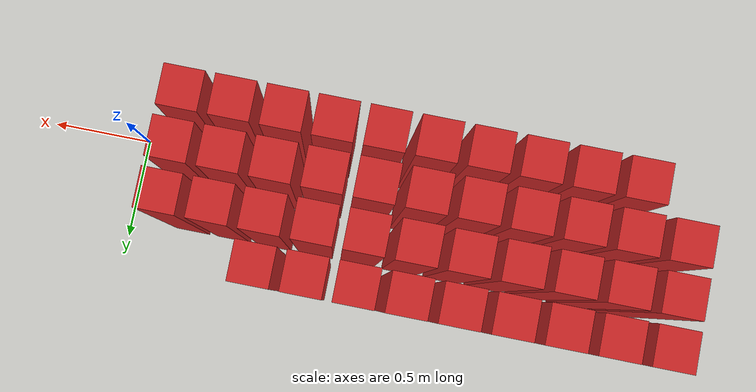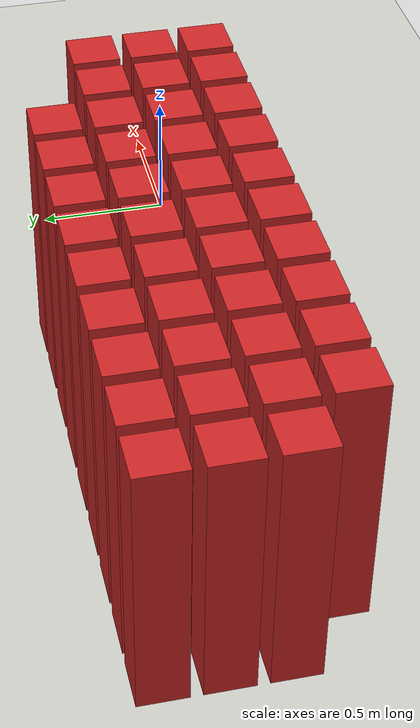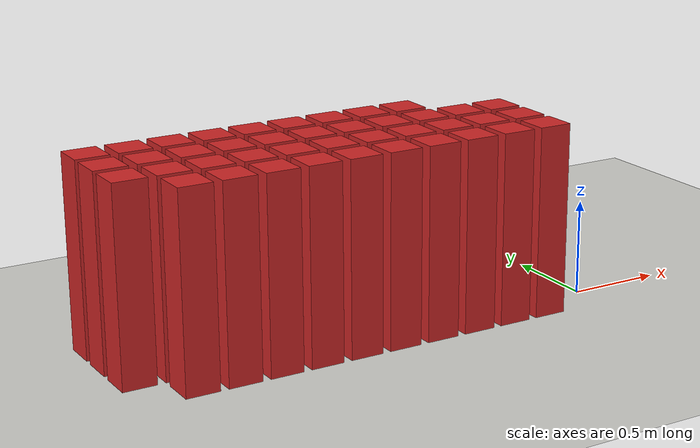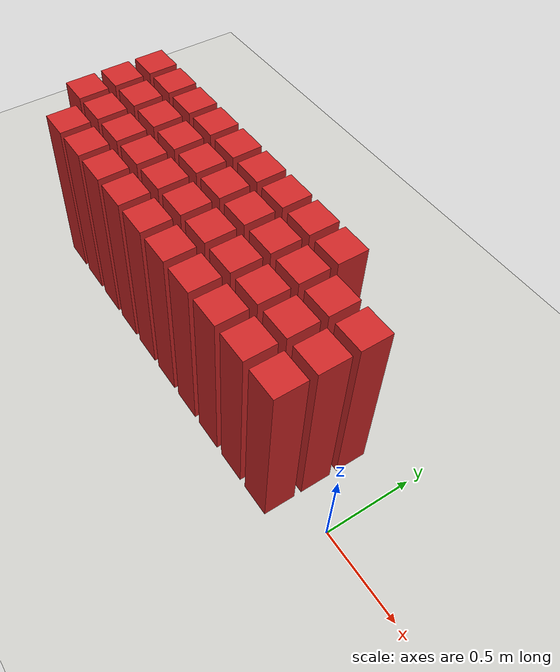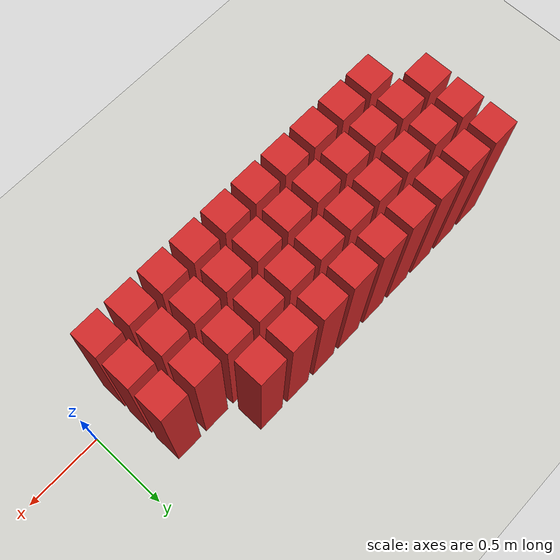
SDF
<sdf version="1.7">
 <world name="default">
  <model name="ground_plane">
   <static>1</static>
   <link name="link">
    <collision name="collision">
     <geometry><plane><normal>0 0 1</normal><size>100 100</size></plane></geometry>
     <surface>
      <contact><collide_bitmask>65535</collide_bitmask></contact>
      <friction><ode><mu>100</mu><mu2>50</mu2></ode></friction>
     </surface>
    </collision>
    <visual name="visual">
     <cast_shadows>0</cast_shadows>
     <geometry><plane><normal>0 0 1</normal><size>100 100</size></plane></geometry>
     <material>
      <script><uri>file://media/materials/scripts/gazebo.material</uri><name>Gazebo/CeilingTiled</name></script>
     </material>
    </visual>
   </link>
  </model>
  <model name="wall254">
   <link name="link">
    <pose>0 0 0.5 0 -0 0</pose>
    <inertial>
     <mass>0.5167</mass>
     <inertia>
      <ixx>0.000861167</ixx>
      <ixy>0</ixy>
      <ixz>0</ixz>
      <iyy>0.000861167</iyy>
      <iyz>0</iyz>
      <izz>0.000861167</izz>
     </inertia>
    </inertial>
    <collision name="collision">
     <geometry><box><size>0.21 0.21 1</size></box></geometry>
     <surface>
      <contact>
       <poissons_ratio>0.347</poissons_ratio>
       <elastic_modulus>8.8e+09</elastic_modulus>
       <ode><kp>100000</kp><kd>100</kd><max_vel>100</max_vel><min_depth>0.001</min_depth></ode>
      </contact>
      <friction>
       <torsional>
        <coefficient>1</coefficient>
        <use_patch_radius>0</use_patch_radius>
        <surface_radius>0.01</surface_radius>
       </torsional>
      </friction>
     </surface>
    </collision>
    <visual name="visual">
     <geometry><box><size>0.175 0.175 1</size></box></geometry>
     <material>
      <script><uri>file://media/materials/scripts/gazebo.material</uri><name>Gazebo/Red</name></script>
     </material>
    </visual>
   </link>
   <pose>-2.28261 -0.108696 0 0 -0 0</pose>
  </model>
  <model name="wall255">
   <link name="link">
    <pose>0 0 0.5 0 -0 0</pose>
    <inertial>
     <mass>0.5167</mass>
     <inertia>
      <ixx>0.000861167</ixx>
      <ixy>0</ixy>
      <ixz>0</ixz>
      <iyy>0.000861167</iyy>
      <iyz>0</iyz>
      <izz>0.000861167</izz>
     </inertia>
    </inertial>
    <collision name="collision">
     <geometry><box><size>0.21 0.21 1</size></box></geometry>
     <surface>
      <contact>
       <poissons_ratio>0.347</poissons_ratio>
       <elastic_modulus>8.8e+09</elastic_modulus>
       <ode><kp>100000</kp><kd>100</kd><max_vel>100</max_vel><min_depth>0.001</min_depth></ode>
      </contact>
      <friction>
       <torsional>
        <coefficient>1</coefficient>
        <use_patch_radius>0</use_patch_radius>
        <surface_radius>0.01</surface_radius>
       </torsional>
      </friction>
     </surface>
    </collision>
    <visual name="visual">
     <geometry><box><size>0.175 0.175 1</size></box></geometry>
     <material>
      <script><uri>file://media/materials/scripts/gazebo.material</uri><name>Gazebo/Red</name></script>
     </material>
    </visual>
   </link>
   <pose>-2.06522 -0.108696 0 0 -0 0</pose>
  </model>
  <model name="wall256">
   <link name="link">
    <pose>0 0 0.5 0 -0 0</pose>
    <inertial>
     <mass>0.5167</mass>
     <inertia>
      <ixx>0.000861167</ixx>
      <ixy>0</ixy>
      <ixz>0</ixz>
      <iyy>0.000861167</iyy>
      <iyz>0</iyz>
      <izz>0.000861167</izz>
     </inertia>
    </inertial>
    <collision name="collision">
     <geometry><box><size>0.21 0.21 1</size></box></geometry>
     <surface>
      <contact>
       <poissons_ratio>0.347</poissons_ratio>
       <elastic_modulus>8.8e+09</elastic_modulus>
       <ode><kp>100000</kp><kd>100</kd><max_vel>100</max_vel><min_depth>0.001</min_depth></ode>
      </contact>
      <friction>
       <torsional>
        <coefficient>1</coefficient>
        <use_patch_radius>0</use_patch_radius>
        <surface_radius>0.01</surface_radius>
       </torsional>
      </friction>
     </surface>
    </collision>
    <visual name="visual">
     <geometry><box><size>0.175 0.175 1</size></box></geometry>
     <material>
      <script><uri>file://media/materials/scripts/gazebo.material</uri><name>Gazebo/Red</name></script>
     </material>
    </visual>
   </link>
   <pose>-1.84783 -0.108696 0 0 -0 0</pose>
  </model>
  <model name="wall257">
   <link name="link">
    <pose>0 0 0.5 0 -0 0</pose>
    <inertial>
     <mass>0.5167</mass>
     <inertia>
      <ixx>0.000861167</ixx>
      <ixy>0</ixy>
      <ixz>0</ixz>
      <iyy>0.000861167</iyy>
      <iyz>0</iyz>
      <izz>0.000861167</izz>
     </inertia>
    </inertial>
    <collision name="collision">
     <geometry><box><size>0.21 0.21 1</size></box></geometry>
     <surface>
      <contact>
       <poissons_ratio>0.347</poissons_ratio>
       <elastic_modulus>8.8e+09</elastic_modulus>
       <ode><kp>100000</kp><kd>100</kd><max_vel>100</max_vel><min_depth>0.001</min_depth></ode>
      </contact>
      <friction>
       <torsional>
        <coefficient>1</coefficient>
        <use_patch_radius>0</use_patch_radius>
        <surface_radius>0.01</surface_radius>
       </torsional>
      </friction>
     </surface>
    </collision>
    <visual name="visual">
     <geometry><box><size>0.175 0.175 1</size></box></geometry>
     <material>
      <script><uri>file://media/materials/scripts/gazebo.material</uri><name>Gazebo/Red</name></script>
     </material>
    </visual>
   </link>
   <pose>-1.63043 -0.108696 0 0 -0 0</pose>
  </model>
  <model name="wall258">
   <link name="link">
    <pose>0 0 0.5 0 -0 0</pose>
    <inertial>
     <mass>0.5167</mass>
     <inertia>
      <ixx>0.000861167</ixx>
      <ixy>0</ixy>
      <ixz>0</ixz>
      <iyy>0.000861167</iyy>
      <iyz>0</iyz>
      <izz>0.000861167</izz>
     </inertia>
    </inertial>
    <collision name="collision">
     <geometry><box><size>0.21 0.21 1</size></box></geometry>
     <surface>
      <contact>
       <poissons_ratio>0.347</poissons_ratio>
       <elastic_modulus>8.8e+09</elastic_modulus>
       <ode><kp>100000</kp><kd>100</kd><max_vel>100</max_vel><min_depth>0.001</min_depth></ode>
      </contact>
      <friction>
       <torsional>
        <coefficient>1</coefficient>
        <use_patch_radius>0</use_patch_radius>
        <surface_radius>0.01</surface_radius>
       </torsional>
      </friction>
     </surface>
    </collision>
    <visual name="visual">
     <geometry><box><size>0.175 0.175 1</size></box></geometry>
     <material>
      <script><uri>file://media/materials/scripts/gazebo.material</uri><name>Gazebo/Red</name></script>
     </material>
    </visual>
   </link>
   <pose>-1.41304 -0.108696 0 0 -0 0</pose>
  </model>
  <model name="wall259">
   <link name="link">
    <pose>0 0 0.5 0 -0 0</pose>
    <inertial>
     <mass>0.5167</mass>
     <inertia>
      <ixx>0.000861167</ixx>
      <ixy>0</ixy>
      <ixz>0</ixz>
      <iyy>0.000861167</iyy>
      <iyz>0</iyz>
      <izz>0.000861167</izz>
     </inertia>
    </inertial>
    <collision name="collision">
     <geometry><box><size>0.21 0.21 1</size></box></geometry>
     <surface>
      <contact>
       <poissons_ratio>0.347</poissons_ratio>
       <elastic_modulus>8.8e+09</elastic_modulus>
       <ode><kp>100000</kp><kd>100</kd><max_vel>100</max_vel><min_depth>0.001</min_depth></ode>
      </contact>
      <friction>
       <torsional>
        <coefficient>1</coefficient>
        <use_patch_radius>0</use_patch_radius>
        <surface_radius>0.01</surface_radius>
       </torsional>
      </friction>
     </surface>
    </collision>
    <visual name="visual">
     <geometry><box><size>0.175 0.175 1</size></box></geometry>
     <material>
      <script><uri>file://media/materials/scripts/gazebo.material</uri><name>Gazebo/Red</name></script>
     </material>
    </visual>
   </link>
   <pose>-1.19565 -0.108696 0 0 -0 0</pose>
  </model>
  <model name="wall260">
   <link name="link">
    <pose>0 0 0.5 0 -0 0</pose>
    <inertial>
     <mass>0.5167</mass>
     <inertia>
      <ixx>0.000861167</ixx>
      <ixy>0</ixy>
      <ixz>0</ixz>
      <iyy>0.000861167</iyy>
      <iyz>0</iyz>
      <izz>0.000861167</izz>
     </inertia>
    </inertial>
    <collision name="collision">
     <geometry><box><size>0.21 0.21 1</size></box></geometry>
     <surface>
      <contact>
       <poissons_ratio>0.347</poissons_ratio>
       <elastic_modulus>8.8e+09</elastic_modulus>
       <ode><kp>100000</kp><kd>100</kd><max_vel>100</max_vel><min_depth>0.001</min_depth></ode>
      </contact>
      <friction>
       <torsional>
        <coefficient>1</coefficient>
        <use_patch_radius>0</use_patch_radius>
        <surface_radius>0.01</surface_radius>
       </torsional>
      </friction>
     </surface>
    </collision>
    <visual name="visual">
     <geometry><box><size>0.175 0.175 1</size></box></geometry>
     <material>
      <script><uri>file://media/materials/scripts/gazebo.material</uri><name>Gazebo/Red</name></script>
     </material>
    </visual>
   </link>
   <pose>-0.978261 -0.108696 0 0 -0 0</pose>
  </model>
  <model name="wall261">
   <link name="link">
    <pose>0 0 0.5 0 -0 0</pose>
    <inertial>
     <mass>0.5167</mass>
     <inertia>
      <ixx>0.000861167</ixx>
      <ixy>0</ixy>
      <ixz>0</ixz>
      <iyy>0.000861167</iyy>
      <iyz>0</iyz>
      <izz>0.000861167</izz>
     </inertia>
    </inertial>
    <collision name="collision">
     <geometry><box><size>0.21 0.21 1</size></box></geometry>
     <surface>
      <contact>
       <poissons_ratio>0.347</poissons_ratio>
       <elastic_modulus>8.8e+09</elastic_modulus>
       <ode><kp>100000</kp><kd>100</kd><max_vel>100</max_vel><min_depth>0.001</min_depth></ode>
      </contact>
      <friction>
       <torsional>
        <coefficient>1</coefficient>
        <use_patch_radius>0</use_patch_radius>
        <surface_radius>0.01</surface_radius>
       </torsional>
      </friction>
     </surface>
    </collision>
    <visual name="visual">
     <geometry><box><size>0.175 0.175 1</size></box></geometry>
     <material>
      <script><uri>file://media/materials/scripts/gazebo.material</uri><name>Gazebo/Red</name></script>
     </material>
    </visual>
   </link>
   <pose>-0.76087 -0.108696 0 0 -0 0</pose>
  </model>
  <model name="wall262">
   <link name="link">
    <pose>0 0 0.5 0 -0 0</pose>
    <inertial>
     <mass>0.5167</mass>
     <inertia>
      <ixx>0.000861167</ixx>
      <ixy>0</ixy>
      <ixz>0</ixz>
      <iyy>0.000861167</iyy>
      <iyz>0</iyz>
      <izz>0.000861167</izz>
     </inertia>
    </inertial>
    <collision name="collision">
     <geometry><box><size>0.21 0.21 1</size></box></geometry>
     <surface>
      <contact>
       <poissons_ratio>0.347</poissons_ratio>
       <elastic_modulus>8.8e+09</elastic_modulus>
       <ode><kp>100000</kp><kd>100</kd><max_vel>100</max_vel><min_depth>0.001</min_depth></ode>
      </contact>
      <friction>
       <torsional>
        <coefficient>1</coefficient>
        <use_patch_radius>0</use_patch_radius>
        <surface_radius>0.01</surface_radius>
       </torsional>
      </friction>
     </surface>
    </collision>
    <visual name="visual">
     <geometry><box><size>0.175 0.175 1</size></box></geometry>
     <material>
      <script><uri>file://media/materials/scripts/gazebo.material</uri><name>Gazebo/Red</name></script>
     </material>
    </visual>
   </link>
   <pose>-0.543478 -0.108696 0 0 -0 0</pose>
  </model>
  <model name="wall263">
   <link name="link">
    <pose>0 0 0.5 0 -0 0</pose>
    <inertial>
     <mass>0.5167</mass>
     <inertia>
      <ixx>0.000861167</ixx>
      <ixy>0</ixy>
      <ixz>0</ixz>
      <iyy>0.000861167</iyy>
      <iyz>0</iyz>
      <izz>0.000861167</izz>
     </inertia>
    </inertial>
    <collision name="collision">
     <geometry><box><size>0.21 0.21 1</size></box></geometry>
     <surface>
      <contact>
       <poissons_ratio>0.347</poissons_ratio>
       <elastic_modulus>8.8e+09</elastic_modulus>
       <ode><kp>100000</kp><kd>100</kd><max_vel>100</max_vel><min_depth>0.001</min_depth></ode>
      </contact>
      <friction>
       <torsional>
        <coefficient>1</coefficient>
        <use_patch_radius>0</use_patch_radius>
        <surface_radius>0.01</surface_radius>
       </torsional>
      </friction>
     </surface>
    </collision>
    <visual name="visual">
     <geometry><box><size>0.175 0.175 1</size></box></geometry>
     <material>
      <script><uri>file://media/materials/scripts/gazebo.material</uri><name>Gazebo/Red</name></script>
     </material>
    </visual>
   </link>
   <pose>-0.326087 -0.108696 0 0 -0 0</pose>
  </model>
  <model name="wall276">
   <link name="link">
    <pose>0 0 0.5 0 -0 0</pose>
    <inertial>
     <mass>0.5167</mass>
     <inertia>
      <ixx>0.000861167</ixx>
      <ixy>0</ixy>
      <ixz>0</ixz>
      <iyy>0.000861167</iyy>
      <iyz>0</iyz>
      <izz>0.000861167</izz>
     </inertia>
    </inertial>
    <collision name="collision">
     <geometry><box><size>0.21 0.21 1</size></box></geometry>
     <surface>
      <contact>
       <poissons_ratio>0.347</poissons_ratio>
       <elastic_modulus>8.8e+09</elastic_modulus>
       <ode><kp>100000</kp><kd>100</kd><max_vel>100</max_vel><min_depth>0.001</min_depth></ode>
      </contact>
      <friction>
       <torsional>
        <coefficient>1</coefficient>
        <use_patch_radius>0</use_patch_radius>
        <surface_radius>0.01</surface_radius>
       </torsional>
      </friction>
     </surface>
    </collision>
    <visual name="visual">
     <geometry><box><size>0.175 0.175 1</size></box></geometry>
     <material>
      <script><uri>file://media/materials/scripts/gazebo.material</uri><name>Gazebo/Red</name></script>
     </material>
    </visual>
   </link>
   <pose>-2.5 0.108696 0 0 -0 0</pose>
  </model>
  <model name="wall277">
   <link name="link">
    <pose>0 0 0.5 0 -0 0</pose>
    <inertial>
     <mass>0.5167</mass>
     <inertia>
      <ixx>0.000861167</ixx>
      <ixy>0</ixy>
      <ixz>0</ixz>
      <iyy>0.000861167</iyy>
      <iyz>0</iyz>
      <izz>0.000861167</izz>
     </inertia>
    </inertial>
    <collision name="collision">
     <geometry><box><size>0.21 0.21 1</size></box></geometry>
     <surface>
      <contact>
       <poissons_ratio>0.347</poissons_ratio>
       <elastic_modulus>8.8e+09</elastic_modulus>
       <ode><kp>100000</kp><kd>100</kd><max_vel>100</max_vel><min_depth>0.001</min_depth></ode>
      </contact>
      <friction>
       <torsional>
        <coefficient>1</coefficient>
        <use_patch_radius>0</use_patch_radius>
        <surface_radius>0.01</surface_radius>
       </torsional>
      </friction>
     </surface>
    </collision>
    <visual name="visual">
     <geometry><box><size>0.175 0.175 1</size></box></geometry>
     <material>
      <script><uri>file://media/materials/scripts/gazebo.material</uri><name>Gazebo/Red</name></script>
     </material>
    </visual>
   </link>
   <pose>-2.28261 0.108696 0 0 -0 0</pose>
  </model>
  <model name="wall278">
   <link name="link">
    <pose>0 0 0.5 0 -0 0</pose>
    <inertial>
     <mass>0.5167</mass>
     <inertia>
      <ixx>0.000861167</ixx>
      <ixy>0</ixy>
      <ixz>0</ixz>
      <iyy>0.000861167</iyy>
      <iyz>0</iyz>
      <izz>0.000861167</izz>
     </inertia>
    </inertial>
    <collision name="collision">
     <geometry><box><size>0.21 0.21 1</size></box></geometry>
     <surface>
      <contact>
       <poissons_ratio>0.347</poissons_ratio>
       <elastic_modulus>8.8e+09</elastic_modulus>
       <ode><kp>100000</kp><kd>100</kd><max_vel>100</max_vel><min_depth>0.001</min_depth></ode>
      </contact>
      <friction>
       <torsional>
        <coefficient>1</coefficient>
        <use_patch_radius>0</use_patch_radius>
        <surface_radius>0.01</surface_radius>
       </torsional>
      </friction>
     </surface>
    </collision>
    <visual name="visual">
     <geometry><box><size>0.175 0.175 1</size></box></geometry>
     <material>
      <script><uri>file://media/materials/scripts/gazebo.material</uri><name>Gazebo/Red</name></script>
     </material>
    </visual>
   </link>
   <pose>-2.06522 0.108696 0 0 -0 0</pose>
  </model>
  <model name="wall279">
   <link name="link">
    <pose>0 0 0.5 0 -0 0</pose>
    <inertial>
     <mass>0.5167</mass>
     <inertia>
      <ixx>0.000861167</ixx>
      <ixy>0</ixy>
      <ixz>0</ixz>
      <iyy>0.000861167</iyy>
      <iyz>0</iyz>
      <izz>0.000861167</izz>
     </inertia>
    </inertial>
    <collision name="collision">
     <geometry><box><size>0.21 0.21 1</size></box></geometry>
     <surface>
      <contact>
       <poissons_ratio>0.347</poissons_ratio>
       <elastic_modulus>8.8e+09</elastic_modulus>
       <ode><kp>100000</kp><kd>100</kd><max_vel>100</max_vel><min_depth>0.001</min_depth></ode>
      </contact>
      <friction>
       <torsional>
        <coefficient>1</coefficient>
        <use_patch_radius>0</use_patch_radius>
        <surface_radius>0.01</surface_radius>
       </torsional>
      </friction>
     </surface>
    </collision>
    <visual name="visual">
     <geometry><box><size>0.175 0.175 1</size></box></geometry>
     <material>
      <script><uri>file://media/materials/scripts/gazebo.material</uri><name>Gazebo/Red</name></script>
     </material>
    </visual>
   </link>
   <pose>-1.84783 0.108696 0 0 -0 0</pose>
  </model>
  <model name="wall280">
   <link name="link">
    <pose>0 0 0.5 0 -0 0</pose>
    <inertial>
     <mass>0.5167</mass>
     <inertia>
      <ixx>0.000861167</ixx>
      <ixy>0</ixy>
      <ixz>0</ixz>
      <iyy>0.000861167</iyy>
      <iyz>0</iyz>
      <izz>0.000861167</izz>
     </inertia>
    </inertial>
    <collision name="collision">
     <geometry><box><size>0.21 0.21 1</size></box></geometry>
     <surface>
      <contact>
       <poissons_ratio>0.347</poissons_ratio>
       <elastic_modulus>8.8e+09</elastic_modulus>
       <ode><kp>100000</kp><kd>100</kd><max_vel>100</max_vel><min_depth>0.001</min_depth></ode>
      </contact>
      <friction>
       <torsional>
        <coefficient>1</coefficient>
        <use_patch_radius>0</use_patch_radius>
        <surface_radius>0.01</surface_radius>
       </torsional>
      </friction>
     </surface>
    </collision>
    <visual name="visual">
     <geometry><box><size>0.175 0.175 1</size></box></geometry>
     <material>
      <script><uri>file://media/materials/scripts/gazebo.material</uri><name>Gazebo/Red</name></script>
     </material>
    </visual>
   </link>
   <pose>-1.63043 0.108696 0 0 -0 0</pose>
  </model>
  <model name="wall281">
   <link name="link">
    <pose>0 0 0.5 0 -0 0</pose>
    <inertial>
     <mass>0.5167</mass>
     <inertia>
      <ixx>0.000861167</ixx>
      <ixy>0</ixy>
      <ixz>0</ixz>
      <iyy>0.000861167</iyy>
      <iyz>0</iyz>
      <izz>0.000861167</izz>
     </inertia>
    </inertial>
    <collision name="collision">
     <geometry><box><size>0.21 0.21 1</size></box></geometry>
     <surface>
      <contact>
       <poissons_ratio>0.347</poissons_ratio>
       <elastic_modulus>8.8e+09</elastic_modulus>
       <ode><kp>100000</kp><kd>100</kd><max_vel>100</max_vel><min_depth>0.001</min_depth></ode>
      </contact>
      <friction>
       <torsional>
        <coefficient>1</coefficient>
        <use_patch_radius>0</use_patch_radius>
        <surface_radius>0.01</surface_radius>
       </torsional>
      </friction>
     </surface>
    </collision>
    <visual name="visual">
     <geometry><box><size>0.175 0.175 1</size></box></geometry>
     <material>
      <script><uri>file://media/materials/scripts/gazebo.material</uri><name>Gazebo/Red</name></script>
     </material>
    </visual>
   </link>
   <pose>-1.41304 0.108696 0 0 -0 0</pose>
  </model>
  <model name="wall282">
   <link name="link">
    <pose>0 0 0.5 0 -0 0</pose>
    <inertial>
     <mass>0.5167</mass>
     <inertia>
      <ixx>0.000861167</ixx>
      <ixy>0</ixy>
      <ixz>0</ixz>
      <iyy>0.000861167</iyy>
      <iyz>0</iyz>
      <izz>0.000861167</izz>
     </inertia>
    </inertial>
    <collision name="collision">
     <geometry><box><size>0.21 0.21 1</size></box></geometry>
     <surface>
      <contact>
       <poissons_ratio>0.347</poissons_ratio>
       <elastic_modulus>8.8e+09</elastic_modulus>
       <ode><kp>100000</kp><kd>100</kd><max_vel>100</max_vel><min_depth>0.001</min_depth></ode>
      </contact>
      <friction>
       <torsional>
        <coefficient>1</coefficient>
        <use_patch_radius>0</use_patch_radius>
        <surface_radius>0.01</surface_radius>
       </torsional>
      </friction>
     </surface>
    </collision>
    <visual name="visual">
     <geometry><box><size>0.175 0.175 1</size></box></geometry>
     <material>
      <script><uri>file://media/materials/scripts/gazebo.material</uri><name>Gazebo/Red</name></script>
     </material>
    </visual>
   </link>
   <pose>-1.19565 0.108696 0 0 -0 0</pose>
  </model>
  <model name="wall283">
   <link name="link">
    <pose>0 0 0.5 0 -0 0</pose>
    <inertial>
     <mass>0.5167</mass>
     <inertia>
      <ixx>0.000861167</ixx>
      <ixy>0</ixy>
      <ixz>0</ixz>
      <iyy>0.000861167</iyy>
      <iyz>0</iyz>
      <izz>0.000861167</izz>
     </inertia>
    </inertial>
    <collision name="collision">
     <geometry><box><size>0.21 0.21 1</size></box></geometry>
     <surface>
      <contact>
       <poissons_ratio>0.347</poissons_ratio>
       <elastic_modulus>8.8e+09</elastic_modulus>
       <ode><kp>100000</kp><kd>100</kd><max_vel>100</max_vel><min_depth>0.001</min_depth></ode>
      </contact>
      <friction>
       <torsional>
        <coefficient>1</coefficient>
        <use_patch_radius>0</use_patch_radius>
        <surface_radius>0.01</surface_radius>
       </torsional>
      </friction>
     </surface>
    </collision>
    <visual name="visual">
     <geometry><box><size>0.175 0.175 1</size></box></geometry>
     <material>
      <script><uri>file://media/materials/scripts/gazebo.material</uri><name>Gazebo/Red</name></script>
     </material>
    </visual>
   </link>
   <pose>-0.978261 0.108696 0 0 -0 0</pose>
  </model>
  <model name="wall284">
   <link name="link">
    <pose>0 0 0.5 0 -0 0</pose>
    <inertial>
     <mass>0.5167</mass>
     <inertia>
      <ixx>0.000861167</ixx>
      <ixy>0</ixy>
      <ixz>0</ixz>
      <iyy>0.000861167</iyy>
      <iyz>0</iyz>
      <izz>0.000861167</izz>
     </inertia>
    </inertial>
    <collision name="collision">
     <geometry><box><size>0.21 0.21 1</size></box></geometry>
     <surface>
      <contact>
       <poissons_ratio>0.347</poissons_ratio>
       <elastic_modulus>8.8e+09</elastic_modulus>
       <ode><kp>100000</kp><kd>100</kd><max_vel>100</max_vel><min_depth>0.001</min_depth></ode>
      </contact>
      <friction>
       <torsional>
        <coefficient>1</coefficient>
        <use_patch_radius>0</use_patch_radius>
        <surface_radius>0.01</surface_radius>
       </torsional>
      </friction>
     </surface>
    </collision>
    <visual name="visual">
     <geometry><box><size>0.175 0.175 1</size></box></geometry>
     <material>
      <script><uri>file://media/materials/scripts/gazebo.material</uri><name>Gazebo/Red</name></script>
     </material>
    </visual>
   </link>
   <pose>-0.76087 0.108696 0 0 -0 0</pose>
  </model>
  <model name="wall285">
   <link name="link">
    <pose>0 0 0.5 0 -0 0</pose>
    <inertial>
     <mass>0.5167</mass>
     <inertia>
      <ixx>0.000861167</ixx>
      <ixy>0</ixy>
      <ixz>0</ixz>
      <iyy>0.000861167</iyy>
      <iyz>0</iyz>
      <izz>0.000861167</izz>
     </inertia>
    </inertial>
    <collision name="collision">
     <geometry><box><size>0.21 0.21 1</size></box></geometry>
     <surface>
      <contact>
       <poissons_ratio>0.347</poissons_ratio>
       <elastic_modulus>8.8e+09</elastic_modulus>
       <ode><kp>100000</kp><kd>100</kd><max_vel>100</max_vel><min_depth>0.001</min_depth></ode>
      </contact>
      <friction>
       <torsional>
        <coefficient>1</coefficient>
        <use_patch_radius>0</use_patch_radius>
        <surface_radius>0.01</surface_radius>
       </torsional>
      </friction>
     </surface>
    </collision>
    <visual name="visual">
     <geometry><box><size>0.175 0.175 1</size></box></geometry>
     <material>
      <script><uri>file://media/materials/scripts/gazebo.material</uri><name>Gazebo/Red</name></script>
     </material>
    </visual>
   </link>
   <pose>-0.543478 0.108696 0 0 -0 0</pose>
  </model>
  <model name="wall286">
   <link name="link">
    <pose>0 0 0.5 0 -0 0</pose>
    <inertial>
     <mass>0.5167</mass>
     <inertia>
      <ixx>0.000861167</ixx>
      <ixy>0</ixy>
      <ixz>0</ixz>
      <iyy>0.000861167</iyy>
      <iyz>0</iyz>
      <izz>0.000861167</izz>
     </inertia>
    </inertial>
    <collision name="collision">
     <geometry><box><size>0.21 0.21 1</size></box></geometry>
     <surface>
      <contact>
       <poissons_ratio>0.347</poissons_ratio>
       <elastic_modulus>8.8e+09</elastic_modulus>
       <ode><kp>100000</kp><kd>100</kd><max_vel>100</max_vel><min_depth>0.001</min_depth></ode>
      </contact>
      <friction>
       <torsional>
        <coefficient>1</coefficient>
        <use_patch_radius>0</use_patch_radius>
        <surface_radius>0.01</surface_radius>
       </torsional>
      </friction>
     </surface>
    </collision>
    <visual name="visual">
     <geometry><box><size>0.175 0.175 1</size></box></geometry>
     <material>
      <script><uri>file://media/materials/scripts/gazebo.material</uri><name>Gazebo/Red</name></script>
     </material>
    </visual>
   </link>
   <pose>-0.326087 0.108696 0 0 -0 0</pose>
  </model>
  <model name="wall299">
   <link name="link">
    <pose>0 0 0.5 0 -0 0</pose>
    <inertial>
     <mass>0.5167</mass>
     <inertia>
      <ixx>0.000861167</ixx>
      <ixy>0</ixy>
      <ixz>0</ixz>
      <iyy>0.000861167</iyy>
      <iyz>0</iyz>
      <izz>0.000861167</izz>
     </inertia>
    </inertial>
    <collision name="collision">
     <geometry><box><size>0.21 0.21 1</size></box></geometry>
     <surface>
      <contact>
       <poissons_ratio>0.347</poissons_ratio>
       <elastic_modulus>8.8e+09</elastic_modulus>
       <ode><kp>100000</kp><kd>100</kd><max_vel>100</max_vel><min_depth>0.001</min_depth></ode>
      </contact>
      <friction>
       <torsional>
        <coefficient>1</coefficient>
        <use_patch_radius>0</use_patch_radius>
        <surface_radius>0.01</surface_radius>
       </torsional>
      </friction>
     </surface>
    </collision>
    <visual name="visual">
     <geometry><box><size>0.175 0.175 1</size></box></geometry>
     <material>
      <script><uri>file://media/materials/scripts/gazebo.material</uri><name>Gazebo/Red</name></script>
     </material>
    </visual>
   </link>
   <pose>-2.5 0.326087 0 0 -0 0</pose>
  </model>
  <model name="wall300">
   <link name="link">
    <pose>0 0 0.5 0 -0 0</pose>
    <inertial>
     <mass>0.5167</mass>
     <inertia>
      <ixx>0.000861167</ixx>
      <ixy>0</ixy>
      <ixz>0</ixz>
      <iyy>0.000861167</iyy>
      <iyz>0</iyz>
      <izz>0.000861167</izz>
     </inertia>
    </inertial>
    <collision name="collision">
     <geometry><box><size>0.21 0.21 1</size></box></geometry>
     <surface>
      <contact>
       <poissons_ratio>0.347</poissons_ratio>
       <elastic_modulus>8.8e+09</elastic_modulus>
       <ode><kp>100000</kp><kd>100</kd><max_vel>100</max_vel><min_depth>0.001</min_depth></ode>
      </contact>
      <friction>
       <torsional>
        <coefficient>1</coefficient>
        <use_patch_radius>0</use_patch_radius>
        <surface_radius>0.01</surface_radius>
       </torsional>
      </friction>
     </surface>
    </collision>
    <visual name="visual">
     <geometry><box><size>0.175 0.175 1</size></box></geometry>
     <material>
      <script><uri>file://media/materials/scripts/gazebo.material</uri><name>Gazebo/Red</name></script>
     </material>
    </visual>
   </link>
   <pose>-2.28261 0.326087 0 0 -0 0</pose>
  </model>
  <model name="wall301">
   <link name="link">
    <pose>0 0 0.5 0 -0 0</pose>
    <inertial>
     <mass>0.5167</mass>
     <inertia>
      <ixx>0.000861167</ixx>
      <ixy>0</ixy>
      <ixz>0</ixz>
      <iyy>0.000861167</iyy>
      <iyz>0</iyz>
      <izz>0.000861167</izz>
     </inertia>
    </inertial>
    <collision name="collision">
     <geometry><box><size>0.21 0.21 1</size></box></geometry>
     <surface>
      <contact>
       <poissons_ratio>0.347</poissons_ratio>
       <elastic_modulus>8.8e+09</elastic_modulus>
       <ode><kp>100000</kp><kd>100</kd><max_vel>100</max_vel><min_depth>0.001</min_depth></ode>
      </contact>
      <friction>
       <torsional>
        <coefficient>1</coefficient>
        <use_patch_radius>0</use_patch_radius>
        <surface_radius>0.01</surface_radius>
       </torsional>
      </friction>
     </surface>
    </collision>
    <visual name="visual">
     <geometry><box><size>0.175 0.175 1</size></box></geometry>
     <material>
      <script><uri>file://media/materials/scripts/gazebo.material</uri><name>Gazebo/Red</name></script>
     </material>
    </visual>
   </link>
   <pose>-2.06522 0.326087 0 0 -0 0</pose>
  </model>
  <model name="wall302">
   <link name="link">
    <pose>0 0 0.5 0 -0 0</pose>
    <inertial>
     <mass>0.5167</mass>
     <inertia>
      <ixx>0.000861167</ixx>
      <ixy>0</ixy>
      <ixz>0</ixz>
      <iyy>0.000861167</iyy>
      <iyz>0</iyz>
      <izz>0.000861167</izz>
     </inertia>
    </inertial>
    <collision name="collision">
     <geometry><box><size>0.21 0.21 1</size></box></geometry>
     <surface>
      <contact>
       <poissons_ratio>0.347</poissons_ratio>
       <elastic_modulus>8.8e+09</elastic_modulus>
       <ode><kp>100000</kp><kd>100</kd><max_vel>100</max_vel><min_depth>0.001</min_depth></ode>
      </contact>
      <friction>
       <torsional>
        <coefficient>1</coefficient>
        <use_patch_radius>0</use_patch_radius>
        <surface_radius>0.01</surface_radius>
       </torsional>
      </friction>
     </surface>
    </collision>
    <visual name="visual">
     <geometry><box><size>0.175 0.175 1</size></box></geometry>
     <material>
      <script><uri>file://media/materials/scripts/gazebo.material</uri><name>Gazebo/Red</name></script>
     </material>
    </visual>
   </link>
   <pose>-1.84783 0.326087 0 0 -0 0</pose>
  </model>
  <model name="wall303">
   <link name="link">
    <pose>0 0 0.5 0 -0 0</pose>
    <inertial>
     <mass>0.5167</mass>
     <inertia>
      <ixx>0.000861167</ixx>
      <ixy>0</ixy>
      <ixz>0</ixz>
      <iyy>0.000861167</iyy>
      <iyz>0</iyz>
      <izz>0.000861167</izz>
     </inertia>
    </inertial>
    <collision name="collision">
     <geometry><box><size>0.21 0.21 1</size></box></geometry>
     <surface>
      <contact>
       <poissons_ratio>0.347</poissons_ratio>
       <elastic_modulus>8.8e+09</elastic_modulus>
       <ode><kp>100000</kp><kd>100</kd><max_vel>100</max_vel><min_depth>0.001</min_depth></ode>
      </contact>
      <friction>
       <torsional>
        <coefficient>1</coefficient>
        <use_patch_radius>0</use_patch_radius>
        <surface_radius>0.01</surface_radius>
       </torsional>
      </friction>
     </surface>
    </collision>
    <visual name="visual">
     <geometry><box><size>0.175 0.175 1</size></box></geometry>
     <material>
      <script><uri>file://media/materials/scripts/gazebo.material</uri><name>Gazebo/Red</name></script>
     </material>
    </visual>
   </link>
   <pose>-1.63043 0.326087 0 0 -0 0</pose>
  </model>
  <model name="wall304">
   <link name="link">
    <pose>0 0 0.5 0 -0 0</pose>
    <inertial>
     <mass>0.5167</mass>
     <inertia>
      <ixx>0.000861167</ixx>
      <ixy>0</ixy>
      <ixz>0</ixz>
      <iyy>0.000861167</iyy>
      <iyz>0</iyz>
      <izz>0.000861167</izz>
     </inertia>
    </inertial>
    <collision name="collision">
     <geometry><box><size>0.21 0.21 1</size></box></geometry>
     <surface>
      <contact>
       <poissons_ratio>0.347</poissons_ratio>
       <elastic_modulus>8.8e+09</elastic_modulus>
       <ode><kp>100000</kp><kd>100</kd><max_vel>100</max_vel><min_depth>0.001</min_depth></ode>
      </contact>
      <friction>
       <torsional>
        <coefficient>1</coefficient>
        <use_patch_radius>0</use_patch_radius>
        <surface_radius>0.01</surface_radius>
       </torsional>
      </friction>
     </surface>
    </collision>
    <visual name="visual">
     <geometry><box><size>0.175 0.175 1</size></box></geometry>
     <material>
      <script><uri>file://media/materials/scripts/gazebo.material</uri><name>Gazebo/Red</name></script>
     </material>
    </visual>
   </link>
   <pose>-1.41304 0.326087 0 0 -0 0</pose>
  </model>
  <model name="wall305">
   <link name="link">
    <pose>0 0 0.5 0 -0 0</pose>
    <inertial>
     <mass>0.5167</mass>
     <inertia>
      <ixx>0.000861167</ixx>
      <ixy>0</ixy>
      <ixz>0</ixz>
      <iyy>0.000861167</iyy>
      <iyz>0</iyz>
      <izz>0.000861167</izz>
     </inertia>
    </inertial>
    <collision name="collision">
     <geometry><box><size>0.21 0.21 1</size></box></geometry>
     <surface>
      <contact>
       <poissons_ratio>0.347</poissons_ratio>
       <elastic_modulus>8.8e+09</elastic_modulus>
       <ode><kp>100000</kp><kd>100</kd><max_vel>100</max_vel><min_depth>0.001</min_depth></ode>
      </contact>
      <friction>
       <torsional>
        <coefficient>1</coefficient>
        <use_patch_radius>0</use_patch_radius>
        <surface_radius>0.01</surface_radius>
       </torsional>
      </friction>
     </surface>
    </collision>
    <visual name="visual">
     <geometry><box><size>0.175 0.175 1</size></box></geometry>
     <material>
      <script><uri>file://media/materials/scripts/gazebo.material</uri><name>Gazebo/Red</name></script>
     </material>
    </visual>
   </link>
   <pose>-1.19565 0.326087 0 0 -0 0</pose>
  </model>
  <model name="wall306">
   <link name="link">
    <pose>0 0 0.5 0 -0 0</pose>
    <inertial>
     <mass>0.5167</mass>
     <inertia>
      <ixx>0.000861167</ixx>
      <ixy>0</ixy>
      <ixz>0</ixz>
      <iyy>0.000861167</iyy>
      <iyz>0</iyz>
      <izz>0.000861167</izz>
     </inertia>
    </inertial>
    <collision name="collision">
     <geometry><box><size>0.21 0.21 1</size></box></geometry>
     <surface>
      <contact>
       <poissons_ratio>0.347</poissons_ratio>
       <elastic_modulus>8.8e+09</elastic_modulus>
       <ode><kp>100000</kp><kd>100</kd><max_vel>100</max_vel><min_depth>0.001</min_depth></ode>
      </contact>
      <friction>
       <torsional>
        <coefficient>1</coefficient>
        <use_patch_radius>0</use_patch_radius>
        <surface_radius>0.01</surface_radius>
       </torsional>
      </friction>
     </surface>
    </collision>
    <visual name="visual">
     <geometry><box><size>0.175 0.175 1</size></box></geometry>
     <material>
      <script><uri>file://media/materials/scripts/gazebo.material</uri><name>Gazebo/Red</name></script>
     </material>
    </visual>
   </link>
   <pose>-0.978261 0.326087 0 0 -0 0</pose>
  </model>
  <model name="wall307">
   <link name="link">
    <pose>0 0 0.5 0 -0 0</pose>
    <inertial>
     <mass>0.5167</mass>
     <inertia>
      <ixx>0.000861167</ixx>
      <ixy>0</ixy>
      <ixz>0</ixz>
      <iyy>0.000861167</iyy>
      <iyz>0</iyz>
      <izz>0.000861167</izz>
     </inertia>
    </inertial>
    <collision name="collision">
     <geometry><box><size>0.21 0.21 1</size></box></geometry>
     <surface>
      <contact>
       <poissons_ratio>0.347</poissons_ratio>
       <elastic_modulus>8.8e+09</elastic_modulus>
       <ode><kp>100000</kp><kd>100</kd><max_vel>100</max_vel><min_depth>0.001</min_depth></ode>
      </contact>
      <friction>
       <torsional>
        <coefficient>1</coefficient>
        <use_patch_radius>0</use_patch_radius>
        <surface_radius>0.01</surface_radius>
       </torsional>
      </friction>
     </surface>
    </collision>
    <visual name="visual">
     <geometry><box><size>0.175 0.175 1</size></box></geometry>
     <material>
      <script><uri>file://media/materials/scripts/gazebo.material</uri><name>Gazebo/Red</name></script>
     </material>
    </visual>
   </link>
   <pose>-0.76087 0.326087 0 0 -0 0</pose>
  </model>
  <model name="wall308">
   <link name="link">
    <pose>0 0 0.5 0 -0 0</pose>
    <inertial>
     <mass>0.5167</mass>
     <inertia>
      <ixx>0.000861167</ixx>
      <ixy>0</ixy>
      <ixz>0</ixz>
      <iyy>0.000861167</iyy>
      <iyz>0</iyz>
      <izz>0.000861167</izz>
     </inertia>
    </inertial>
    <collision name="collision">
     <geometry><box><size>0.21 0.21 1</size></box></geometry>
     <surface>
      <contact>
       <poissons_ratio>0.347</poissons_ratio>
       <elastic_modulus>8.8e+09</elastic_modulus>
       <ode><kp>100000</kp><kd>100</kd><max_vel>100</max_vel><min_depth>0.001</min_depth></ode>
      </contact>
      <friction>
       <torsional>
        <coefficient>1</coefficient>
        <use_patch_radius>0</use_patch_radius>
        <surface_radius>0.01</surface_radius>
       </torsional>
      </friction>
     </surface>
    </collision>
    <visual name="visual">
     <geometry><box><size>0.175 0.175 1</size></box></geometry>
     <material>
      <script><uri>file://media/materials/scripts/gazebo.material</uri><name>Gazebo/Red</name></script>
     </material>
    </visual>
   </link>
   <pose>-0.543478 0.326087 0 0 -0 0</pose>
  </model>
  <model name="wall309">
   <link name="link">
    <pose>0 0 0.5 0 -0 0</pose>
    <inertial>
     <mass>0.5167</mass>
     <inertia>
      <ixx>0.000861167</ixx>
      <ixy>0</ixy>
      <ixz>0</ixz>
      <iyy>0.000861167</iyy>
      <iyz>0</iyz>
      <izz>0.000861167</izz>
     </inertia>
    </inertial>
    <collision name="collision">
     <geometry><box><size>0.21 0.21 1</size></box></geometry>
     <surface>
      <contact>
       <poissons_ratio>0.347</poissons_ratio>
       <elastic_modulus>8.8e+09</elastic_modulus>
       <ode><kp>100000</kp><kd>100</kd><max_vel>100</max_vel><min_depth>0.001</min_depth></ode>
      </contact>
      <friction>
       <torsional>
        <coefficient>1</coefficient>
        <use_patch_radius>0</use_patch_radius>
        <surface_radius>0.01</surface_radius>
       </torsional>
      </friction>
     </surface>
    </collision>
    <visual name="visual">
     <geometry><box><size>0.175 0.175 1</size></box></geometry>
     <material>
      <script><uri>file://media/materials/scripts/gazebo.material</uri><name>Gazebo/Red</name></script>
     </material>
    </visual>
   </link>
   <pose>-0.326087 0.326087 0 0 -0 0</pose>
  </model>
  <model name="wall322">
   <link name="link">
    <pose>0 0 0.5 0 -0 0</pose>
    <inertial>
     <mass>0.5167</mass>
     <inertia>
      <ixx>0.000861167</ixx>
      <ixy>0</ixy>
      <ixz>0</ixz>
      <iyy>0.000861167</iyy>
      <iyz>0</iyz>
      <izz>0.000861167</izz>
     </inertia>
    </inertial>
    <collision name="collision">
     <geometry><box><size>0.21 0.21 1</size></box></geometry>
     <surface>
      <contact>
       <poissons_ratio>0.347</poissons_ratio>
       <elastic_modulus>8.8e+09</elastic_modulus>
       <ode><kp>100000</kp><kd>100</kd><max_vel>100</max_vel><min_depth>0.001</min_depth></ode>
      </contact>
      <friction>
       <torsional>
        <coefficient>1</coefficient>
        <use_patch_radius>0</use_patch_radius>
        <surface_radius>0.01</surface_radius>
       </torsional>
      </friction>
     </surface>
    </collision>
    <visual name="visual">
     <geometry><box><size>0.175 0.175 1</size></box></geometry>
     <material>
      <script><uri>file://media/materials/scripts/gazebo.material</uri><name>Gazebo/Red</name></script>
     </material>
    </visual>
   </link>
   <pose>-2.5 0.543478 0 0 -0 0</pose>
  </model>
  <model name="wall323">
   <link name="link">
    <pose>0 0 0.5 0 -0 0</pose>
    <inertial>
     <mass>0.5167</mass>
     <inertia>
      <ixx>0.000861167</ixx>
      <ixy>0</ixy>
      <ixz>0</ixz>
      <iyy>0.000861167</iyy>
      <iyz>0</iyz>
      <izz>0.000861167</izz>
     </inertia>
    </inertial>
    <collision name="collision">
     <geometry><box><size>0.21 0.21 1</size></box></geometry>
     <surface>
      <contact>
       <poissons_ratio>0.347</poissons_ratio>
       <elastic_modulus>8.8e+09</elastic_modulus>
       <ode><kp>100000</kp><kd>100</kd><max_vel>100</max_vel><min_depth>0.001</min_depth></ode>
      </contact>
      <friction>
       <torsional>
        <coefficient>1</coefficient>
        <use_patch_radius>0</use_patch_radius>
        <surface_radius>0.01</surface_radius>
       </torsional>
      </friction>
     </surface>
    </collision>
    <visual name="visual">
     <geometry><box><size>0.175 0.175 1</size></box></geometry>
     <material>
      <script><uri>file://media/materials/scripts/gazebo.material</uri><name>Gazebo/Red</name></script>
     </material>
    </visual>
   </link>
   <pose>-2.28261 0.543478 0 0 -0 0</pose>
  </model>
  <model name="wall324">
   <link name="link">
    <pose>0 0 0.5 0 -0 0</pose>
    <inertial>
     <mass>0.5167</mass>
     <inertia>
      <ixx>0.000861167</ixx>
      <ixy>0</ixy>
      <ixz>0</ixz>
      <iyy>0.000861167</iyy>
      <iyz>0</iyz>
      <izz>0.000861167</izz>
     </inertia>
    </inertial>
    <collision name="collision">
     <geometry><box><size>0.21 0.21 1</size></box></geometry>
     <surface>
      <contact>
       <poissons_ratio>0.347</poissons_ratio>
       <elastic_modulus>8.8e+09</elastic_modulus>
       <ode><kp>100000</kp><kd>100</kd><max_vel>100</max_vel><min_depth>0.001</min_depth></ode>
      </contact>
      <friction>
       <torsional>
        <coefficient>1</coefficient>
        <use_patch_radius>0</use_patch_radius>
        <surface_radius>0.01</surface_radius>
       </torsional>
      </friction>
     </surface>
    </collision>
    <visual name="visual">
     <geometry><box><size>0.175 0.175 1</size></box></geometry>
     <material>
      <script><uri>file://media/materials/scripts/gazebo.material</uri><name>Gazebo/Red</name></script>
     </material>
    </visual>
   </link>
   <pose>-2.06522 0.543478 0 0 -0 0</pose>
  </model>
  <model name="wall325">
   <link name="link">
    <pose>0 0 0.5 0 -0 0</pose>
    <inertial>
     <mass>0.5167</mass>
     <inertia>
      <ixx>0.000861167</ixx>
      <ixy>0</ixy>
      <ixz>0</ixz>
      <iyy>0.000861167</iyy>
      <iyz>0</iyz>
      <izz>0.000861167</izz>
     </inertia>
    </inertial>
    <collision name="collision">
     <geometry><box><size>0.21 0.21 1</size></box></geometry>
     <surface>
      <contact>
       <poissons_ratio>0.347</poissons_ratio>
       <elastic_modulus>8.8e+09</elastic_modulus>
       <ode><kp>100000</kp><kd>100</kd><max_vel>100</max_vel><min_depth>0.001</min_depth></ode>
      </contact>
      <friction>
       <torsional>
        <coefficient>1</coefficient>
        <use_patch_radius>0</use_patch_radius>
        <surface_radius>0.01</surface_radius>
       </torsional>
      </friction>
     </surface>
    </collision>
    <visual name="visual">
     <geometry><box><size>0.175 0.175 1</size></box></geometry>
     <material>
      <script><uri>file://media/materials/scripts/gazebo.material</uri><name>Gazebo/Red</name></script>
     </material>
    </visual>
   </link>
   <pose>-1.84783 0.543478 0 0 -0 0</pose>
  </model>
  <model name="wall326">
   <link name="link">
    <pose>0 0 0.5 0 -0 0</pose>
    <inertial>
     <mass>0.5167</mass>
     <inertia>
      <ixx>0.000861167</ixx>
      <ixy>0</ixy>
      <ixz>0</ixz>
      <iyy>0.000861167</iyy>
      <iyz>0</iyz>
      <izz>0.000861167</izz>
     </inertia>
    </inertial>
    <collision name="collision">
     <geometry><box><size>0.21 0.21 1</size></box></geometry>
     <surface>
      <contact>
       <poissons_ratio>0.347</poissons_ratio>
       <elastic_modulus>8.8e+09</elastic_modulus>
       <ode><kp>100000</kp><kd>100</kd><max_vel>100</max_vel><min_depth>0.001</min_depth></ode>
      </contact>
      <friction>
       <torsional>
        <coefficient>1</coefficient>
        <use_patch_radius>0</use_patch_radius>
        <surface_radius>0.01</surface_radius>
       </torsional>
      </friction>
     </surface>
    </collision>
    <visual name="visual">
     <geometry><box><size>0.175 0.175 1</size></box></geometry>
     <material>
      <script><uri>file://media/materials/scripts/gazebo.material</uri><name>Gazebo/Red</name></script>
     </material>
    </visual>
   </link>
   <pose>-1.63043 0.543478 0 0 -0 0</pose>
  </model>
  <model name="wall327">
   <link name="link">
    <pose>0 0 0.5 0 -0 0</pose>
    <inertial>
     <mass>0.5167</mass>
     <inertia>
      <ixx>0.000861167</ixx>
      <ixy>0</ixy>
      <ixz>0</ixz>
      <iyy>0.000861167</iyy>
      <iyz>0</iyz>
      <izz>0.000861167</izz>
     </inertia>
    </inertial>
    <collision name="collision">
     <geometry><box><size>0.21 0.21 1</size></box></geometry>
     <surface>
      <contact>
       <poissons_ratio>0.347</poissons_ratio>
       <elastic_modulus>8.8e+09</elastic_modulus>
       <ode><kp>100000</kp><kd>100</kd><max_vel>100</max_vel><min_depth>0.001</min_depth></ode>
      </contact>
      <friction>
       <torsional>
        <coefficient>1</coefficient>
        <use_patch_radius>0</use_patch_radius>
        <surface_radius>0.01</surface_radius>
       </torsional>
      </friction>
     </surface>
    </collision>
    <visual name="visual">
     <geometry><box><size>0.175 0.175 1</size></box></geometry>
     <material>
      <script><uri>file://media/materials/scripts/gazebo.material</uri><name>Gazebo/Red</name></script>
     </material>
    </visual>
   </link>
   <pose>-1.41304 0.543478 0 0 -0 0</pose>
  </model>
  <model name="wall328">
   <link name="link">
    <pose>0 0 0.5 0 -0 0</pose>
    <inertial>
     <mass>0.5167</mass>
     <inertia>
      <ixx>0.000861167</ixx>
      <ixy>0</ixy>
      <ixz>0</ixz>
      <iyy>0.000861167</iyy>
      <iyz>0</iyz>
      <izz>0.000861167</izz>
     </inertia>
    </inertial>
    <collision name="collision">
     <geometry><box><size>0.21 0.21 1</size></box></geometry>
     <surface>
      <contact>
       <poissons_ratio>0.347</poissons_ratio>
       <elastic_modulus>8.8e+09</elastic_modulus>
       <ode><kp>100000</kp><kd>100</kd><max_vel>100</max_vel><min_depth>0.001</min_depth></ode>
      </contact>
      <friction>
       <torsional>
        <coefficient>1</coefficient>
        <use_patch_radius>0</use_patch_radius>
        <surface_radius>0.01</surface_radius>
       </torsional>
      </friction>
     </surface>
    </collision>
    <visual name="visual">
     <geometry><box><size>0.175 0.175 1</size></box></geometry>
     <material>
      <script><uri>file://media/materials/scripts/gazebo.material</uri><name>Gazebo/Red</name></script>
     </material>
    </visual>
   </link>
   <pose>-1.19565 0.543478 0 0 -0 0</pose>
  </model>
  <model name="wall329">
   <link name="link">
    <pose>0 0 0.5 0 -0 0</pose>
    <inertial>
     <mass>0.5167</mass>
     <inertia>
      <ixx>0.000861167</ixx>
      <ixy>0</ixy>
      <ixz>0</ixz>
      <iyy>0.000861167</iyy>
      <iyz>0</iyz>
      <izz>0.000861167</izz>
     </inertia>
    </inertial>
    <collision name="collision">
     <geometry><box><size>0.21 0.21 1</size></box></geometry>
     <surface>
      <contact>
       <poissons_ratio>0.347</poissons_ratio>
       <elastic_modulus>8.8e+09</elastic_modulus>
       <ode><kp>100000</kp><kd>100</kd><max_vel>100</max_vel><min_depth>0.001</min_depth></ode>
      </contact>
      <friction>
       <torsional>
        <coefficient>1</coefficient>
        <use_patch_radius>0</use_patch_radius>
        <surface_radius>0.01</surface_radius>
       </torsional>
      </friction>
     </surface>
    </collision>
    <visual name="visual">
     <geometry><box><size>0.175 0.175 1</size></box></geometry>
     <material>
      <script><uri>file://media/materials/scripts/gazebo.material</uri><name>Gazebo/Red</name></script>
     </material>
    </visual>
   </link>
   <pose>-0.978261 0.543478 0 0 -0 0</pose>
  </model>
  <model name="wall330">
   <link name="link">
    <pose>0 0 0.5 0 -0 0</pose>
    <inertial>
     <mass>0.5167</mass>
     <inertia>
      <ixx>0.000861167</ixx>
      <ixy>0</ixy>
      <ixz>0</ixz>
      <iyy>0.000861167</iyy>
      <iyz>0</iyz>
      <izz>0.000861167</izz>
     </inertia>
    </inertial>
    <collision name="collision">
     <geometry><box><size>0.21 0.21 1</size></box></geometry>
     <surface>
      <contact>
       <poissons_ratio>0.347</poissons_ratio>
       <elastic_modulus>8.8e+09</elastic_modulus>
       <ode><kp>100000</kp><kd>100</kd><max_vel>100</max_vel><min_depth>0.001</min_depth></ode>
      </contact>
      <friction>
       <torsional>
        <coefficient>1</coefficient>
        <use_patch_radius>0</use_patch_radius>
        <surface_radius>0.01</surface_radius>
       </torsional>
      </friction>
     </surface>
    </collision>
    <visual name="visual">
     <geometry><box><size>0.175 0.175 1</size></box></geometry>
     <material>
      <script><uri>file://media/materials/scripts/gazebo.material</uri><name>Gazebo/Red</name></script>
     </material>
    </visual>
   </link>
   <pose>-0.76087 0.543478 0 0 -0 0</pose>
  </model>
 </world>
</sdf>
